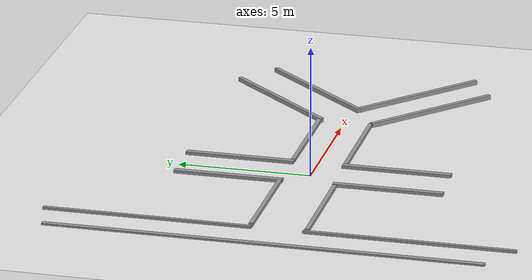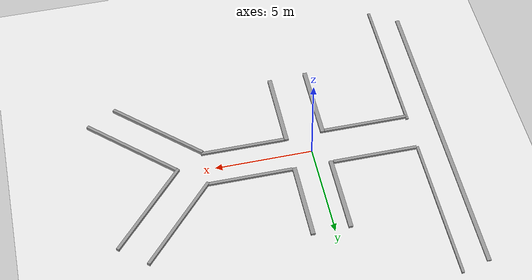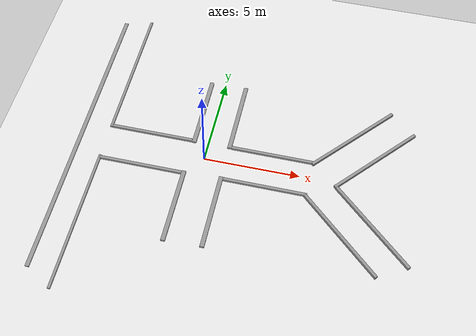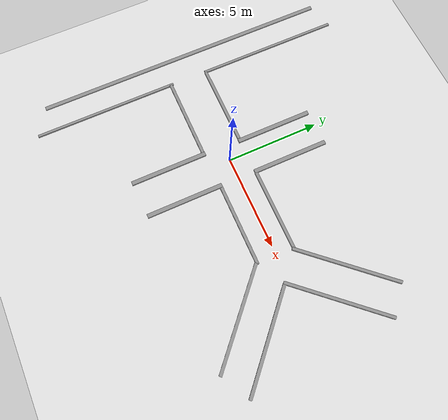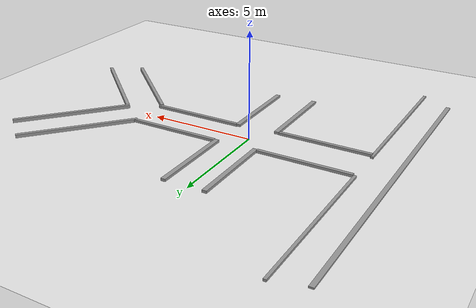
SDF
<sdf version="1.7">
 <world name="default">
  <scene><ambient>0.4 0.4 0.4 1</ambient><background>0.7 0.7 0.7 1</background><shadows>1</shadows></scene>
  <light name="sun" type="directional">
   <pose>0 0 10 0 -0 0</pose>
   <diffuse>0.8 0.8 0.8 1</diffuse>
   <specular>0.2 0.2 0.2 1</specular>
   <attenuation>
    <range>1000</range>
    <constant>0.9</constant>
    <linear>0.01</linear>
    <quadratic>0.001</quadratic>
   </attenuation>
   <direction>-0.5 0.1 -0.9</direction>
   <spot><inner_angle>0</inner_angle><outer_angle>0</outer_angle><falloff>0</falloff></spot>
  </light>
  <model name="ground_plane">
   <static>1</static>
   <link name="link">
    <collision name="collision">
     <geometry><plane><normal>0 0 1</normal><size>100 100</size></plane></geometry>
     <surface>
      <contact><collide_bitmask>65535</collide_bitmask></contact>
      <friction><ode><mu>100</mu><mu2>50</mu2></ode></friction>
     </surface>
    </collision>
    <visual name="visual">
     <cast_shadows>0</cast_shadows>
     <geometry><plane><normal>0 0 1</normal><size>100 100</size></plane></geometry>
     <material>
      <script><uri>file://media/materials/scripts/gazebo.material</uri><name>Gazebo/White</name></script>
     </material>
    </visual>
   </link>
  </model>
  <physics type="ode">
   <real_time_update_rate>1000</real_time_update_rate>
   <max_step_size>0.001</max_step_size>
   <real_time_factor>1</real_time_factor>
   <ode>
    <solver>
     <type>quick</type>
     <iters>150</iters>
     <precon_iters>0</precon_iters>
     <sor>1.4</sor>
     <use_dynamic_moi_rescaling>1</use_dynamic_moi_rescaling>
    </solver>
    <constraints>
     <cfm>1e-05</cfm>
     <erp>0.2</erp>
     <contact_max_correcting_vel>2000</contact_max_correcting_vel>
     <contact_surface_layer>0.01</contact_surface_layer>
    </constraints>
   </ode>
  </physics>
  <gravity>0 0 -9.8</gravity>
  <magnetic_field>6e-06 2.3e-05 -4.2e-05</magnetic_field>
  <atmosphere type="adiabatic"/>
  <spherical_coordinates>
   <surface_model>EARTH_WGS84</surface_model>
   <latitude_deg>0</latitude_deg>
   <longitude_deg>0</longitude_deg>
   <elevation>0</elevation>
   <heading_deg>0</heading_deg>
  </spherical_coordinates>
  <model name="env.sdf">
   <link name="link_1">
    <inertial>
     <mass>0.106058</mass>
     <inertia>
      <ixx>0.149626</ixx>
      <ixy>0</ixy>
      <ixz>0</ixz>
      <iyy>0.000549062</iyy>
      <iyz>0</iyz>
      <izz>0.149932</izz>
     </inertia>
    </inertial>
    <pose>2.68521 -3.91375 0.238962 0 -0 0</pose>
    <visual name="visual">
     <geometry><box><size>0.2199 4.11288 0.117337</size></box></geometry>
     <material>
      <lighting>1</lighting>
      <script><uri>file://media/materials/scripts/gazebo.material</uri><name>Gazebo/Grey</name></script>
      <shader type="pixel"/>
     </material>
    </visual>
    <collision name="collision">
     <geometry><box><size>0.2199 4.11288 0.117337</size></box></geometry>
     <surface>
      <friction>
       <ode><mu>1</mu><mu2>1</mu2><fdir1>0 0 0</fdir1><slip1>0</slip1><slip2>0</slip2></ode>
       <torsional>
        <coefficient>1</coefficient>
        <patch_radius>0</patch_radius>
        <surface_radius>0</surface_radius>
        <use_patch_radius>1</use_patch_radius>
        <ode><slip>0</slip></ode>
       </torsional>
      </friction>
      <bounce><restitution_coefficient>0</restitution_coefficient><threshold>1e+06</threshold></bounce>
      <contact>
       <collide_without_contact>0</collide_without_contact>
       <collide_without_contact_bitmask>1</collide_without_contact_bitmask>
       <collide_bitmask>1</collide_bitmask>
       <ode>
        <soft_cfm>0</soft_cfm>
        <soft_erp>0.2</soft_erp>
        <kp>1e+13</kp>
        <kd>1</kd>
        <max_vel>0.01</max_vel>
        <min_depth>0</min_depth>
       </ode>
       <bullet>
        <split_impulse>1</split_impulse>
        <split_impulse_penetration_threshold>-0.01</split_impulse_penetration_threshold>
        <soft_cfm>0</soft_cfm>
        <soft_erp>0.2</soft_erp>
        <kp>1e+13</kp>
        <kd>1</kd>
       </bullet>
      </contact>
     </surface>
    </collision>
   </link>
   <link name="link_1_clone">
    <inertial>
     <mass>0.106058</mass>
     <inertia>
      <ixx>0.149626</ixx>
      <ixy>0</ixy>
      <ixz>0</ixz>
      <iyy>0.000549062</iyy>
      <iyz>0</iyz>
      <izz>0.149932</izz>
     </inertia>
    </inertial>
    <pose>0.755676 -4.00204 0.265705 0 -0 0</pose>
    <visual name="visual">
     <geometry><box><size>0.2199 4.11288 0.117337</size></box></geometry>
     <material>
      <lighting>1</lighting>
      <script><uri>file://media/materials/scripts/gazebo.material</uri><name>Gazebo/Grey</name></script>
      <shader type="pixel"/>
     </material>
    </visual>
    <collision name="collision">
     <geometry><box><size>0.2199 4.11288 0.117337</size></box></geometry>
     <surface>
      <friction>
       <ode><mu>1</mu><mu2>1</mu2><fdir1>0 0 0</fdir1><slip1>0</slip1><slip2>0</slip2></ode>
       <torsional>
        <coefficient>1</coefficient>
        <patch_radius>0</patch_radius>
        <surface_radius>0</surface_radius>
        <use_patch_radius>1</use_patch_radius>
        <ode><slip>0</slip></ode>
       </torsional>
      </friction>
      <bounce><restitution_coefficient>0</restitution_coefficient><threshold>1e+06</threshold></bounce>
      <contact>
       <collide_without_contact>0</collide_without_contact>
       <collide_without_contact_bitmask>1</collide_without_contact_bitmask>
       <collide_bitmask>1</collide_bitmask>
       <ode>
        <soft_cfm>0</soft_cfm>
        <soft_erp>0.2</soft_erp>
        <kp>1e+13</kp>
        <kd>1</kd>
        <max_vel>0.01</max_vel>
        <min_depth>0</min_depth>
       </ode>
       <bullet>
        <split_impulse>1</split_impulse>
        <split_impulse_penetration_threshold>-0.01</split_impulse_penetration_threshold>
        <soft_cfm>0</soft_cfm>
        <soft_erp>0.2</soft_erp>
        <kp>1e+13</kp>
        <kd>1</kd>
       </bullet>
      </contact>
     </surface>
    </collision>
   </link>
   <link name="link_1_clone_0">
    <inertial>
     <mass>0.106058</mass>
     <inertia>
      <ixx>0.149626</ixx>
      <ixy>0</ixy>
      <ixz>0</ixz>
      <iyy>0.000549062</iyy>
      <iyz>0</iyz>
      <izz>0.149932</izz>
     </inertia>
    </inertial>
    <pose>0.793845 2.01077 0.229783 0 -0 0</pose>
    <visual name="visual">
     <geometry><box><size>0.2199 4.11288 0.117337</size></box></geometry>
     <material>
      <lighting>1</lighting>
      <script><uri>file://media/materials/scripts/gazebo.material</uri><name>Gazebo/Grey</name></script>
      <shader type="pixel"/>
     </material>
    </visual>
    <collision name="collision">
     <geometry><box><size>0.2199 4.11288 0.117337</size></box></geometry>
     <surface>
      <friction>
       <ode><mu>1</mu><mu2>1</mu2><fdir1>0 0 0</fdir1><slip1>0</slip1><slip2>0</slip2></ode>
       <torsional>
        <coefficient>1</coefficient>
        <patch_radius>0</patch_radius>
        <surface_radius>0</surface_radius>
        <use_patch_radius>1</use_patch_radius>
        <ode><slip>0</slip></ode>
       </torsional>
      </friction>
      <bounce><restitution_coefficient>0</restitution_coefficient><threshold>1e+06</threshold></bounce>
      <contact>
       <collide_without_contact>0</collide_without_contact>
       <collide_without_contact_bitmask>1</collide_without_contact_bitmask>
       <collide_bitmask>1</collide_bitmask>
       <ode>
        <soft_cfm>0</soft_cfm>
        <soft_erp>0.2</soft_erp>
        <kp>1e+13</kp>
        <kd>1</kd>
        <max_vel>0.01</max_vel>
        <min_depth>0</min_depth>
       </ode>
       <bullet>
        <split_impulse>1</split_impulse>
        <split_impulse_penetration_threshold>-0.01</split_impulse_penetration_threshold>
        <soft_cfm>0</soft_cfm>
        <soft_erp>0.2</soft_erp>
        <kp>1e+13</kp>
        <kd>1</kd>
       </bullet>
      </contact>
     </surface>
    </collision>
   </link>
   <link name="link_1_clone_1">
    <inertial>
     <mass>0.106058</mass>
     <inertia>
      <ixx>0.149626</ixx>
      <ixy>0</ixy>
      <ixz>0</ixz>
      <iyy>0.000549062</iyy>
      <iyz>0</iyz>
      <izz>0.149932</izz>
     </inertia>
    </inertial>
    <pose>2.69471 2.04252 0.23165 0 -0 0</pose>
    <visual name="visual">
     <geometry><box><size>0.2199 4.11288 0.117337</size></box></geometry>
     <material>
      <lighting>1</lighting>
      <script><uri>file://media/materials/scripts/gazebo.material</uri><name>Gazebo/Grey</name></script>
      <shader type="pixel"/>
     </material>
    </visual>
    <collision name="collision">
     <geometry><box><size>0.2199 4.11288 0.117337</size></box></geometry>
     <surface>
      <friction>
       <ode><mu>1</mu><mu2>1</mu2><fdir1>0 0 0</fdir1><slip1>0</slip1><slip2>0</slip2></ode>
       <torsional>
        <coefficient>1</coefficient>
        <patch_radius>0</patch_radius>
        <surface_radius>0</surface_radius>
        <use_patch_radius>1</use_patch_radius>
        <ode><slip>0</slip></ode>
       </torsional>
      </friction>
      <bounce><restitution_coefficient>0</restitution_coefficient><threshold>1e+06</threshold></bounce>
      <contact>
       <collide_without_contact>0</collide_without_contact>
       <collide_without_contact_bitmask>1</collide_without_contact_bitmask>
       <collide_bitmask>1</collide_bitmask>
       <ode>
        <soft_cfm>0</soft_cfm>
        <soft_erp>0.2</soft_erp>
        <kp>1e+13</kp>
        <kd>1</kd>
        <max_vel>0.01</max_vel>
        <min_depth>0</min_depth>
       </ode>
       <bullet>
        <split_impulse>1</split_impulse>
        <split_impulse_penetration_threshold>-0.01</split_impulse_penetration_threshold>
        <soft_cfm>0</soft_cfm>
        <soft_erp>0.2</soft_erp>
        <kp>1e+13</kp>
        <kd>1</kd>
       </bullet>
      </contact>
     </surface>
    </collision>
   </link>
   <link name="link_2">
    <inertial>
     <mass>0.0833088</mass>
     <inertia>
      <ixx>0.000274978</ixx>
      <ixy>0</ixy>
      <ixz>0</ixz>
      <iyy>0.132485</iyy>
      <iyz>0</iyz>
      <izz>0.132558</izz>
     </inertia>
    </inertial>
    <pose>4.93966 -1.93411 0.219568 0 -0 0</pose>
    <visual name="visual">
     <geometry><box><size>4.3668 0.158383 0.120513</size></box></geometry>
     <material>
      <lighting>1</lighting>
      <script><uri>file://media/materials/scripts/gazebo.material</uri><name>Gazebo/Grey</name></script>
      <shader type="pixel"/>
     </material>
    </visual>
    <collision name="collision">
     <geometry><box><size>4.3668 0.158383 0.120513</size></box></geometry>
     <surface>
      <friction>
       <ode><mu>1</mu><mu2>1</mu2><fdir1>0 0 0</fdir1><slip1>0</slip1><slip2>0</slip2></ode>
       <torsional>
        <coefficient>1</coefficient>
        <patch_radius>0</patch_radius>
        <surface_radius>0</surface_radius>
        <use_patch_radius>1</use_patch_radius>
        <ode><slip>0</slip></ode>
       </torsional>
      </friction>
      <bounce><restitution_coefficient>0</restitution_coefficient><threshold>1e+06</threshold></bounce>
      <contact>
       <collide_without_contact>0</collide_without_contact>
       <collide_without_contact_bitmask>1</collide_without_contact_bitmask>
       <collide_bitmask>1</collide_bitmask>
       <ode>
        <soft_cfm>0</soft_cfm>
        <soft_erp>0.2</soft_erp>
        <kp>1e+13</kp>
        <kd>1</kd>
        <max_vel>0.01</max_vel>
        <min_depth>0</min_depth>
       </ode>
       <bullet>
        <split_impulse>1</split_impulse>
        <split_impulse_penetration_threshold>-0.01</split_impulse_penetration_threshold>
        <soft_cfm>0</soft_cfm>
        <soft_erp>0.2</soft_erp>
        <kp>1e+13</kp>
        <kd>1</kd>
       </bullet>
      </contact>
     </surface>
    </collision>
   </link>
   <link name="link_2_clone">
    <inertial>
     <mass>0.0833088</mass>
     <inertia>
      <ixx>0.000274978</ixx>
      <ixy>0</ixy>
      <ixz>0</ixz>
      <iyy>0.132485</iyy>
      <iyz>0</iyz>
      <izz>0.132558</izz>
     </inertia>
    </inertial>
    <pose>4.98099 0.041324 0.242155 0 -0 0</pose>
    <visual name="visual">
     <geometry><box><size>4.3668 0.158383 0.120513</size></box></geometry>
     <material>
      <lighting>1</lighting>
      <script><uri>file://media/materials/scripts/gazebo.material</uri><name>Gazebo/Grey</name></script>
      <shader type="pixel"/>
     </material>
    </visual>
    <collision name="collision">
     <geometry><box><size>4.3668 0.158383 0.120513</size></box></geometry>
     <surface>
      <friction>
       <ode><mu>1</mu><mu2>1</mu2><fdir1>0 0 0</fdir1><slip1>0</slip1><slip2>0</slip2></ode>
       <torsional>
        <coefficient>1</coefficient>
        <patch_radius>0</patch_radius>
        <surface_radius>0</surface_radius>
        <use_patch_radius>1</use_patch_radius>
        <ode><slip>0</slip></ode>
       </torsional>
      </friction>
      <bounce><restitution_coefficient>0</restitution_coefficient><threshold>1e+06</threshold></bounce>
      <contact>
       <collide_without_contact>0</collide_without_contact>
       <collide_without_contact_bitmask>1</collide_without_contact_bitmask>
       <collide_bitmask>1</collide_bitmask>
       <ode>
        <soft_cfm>0</soft_cfm>
        <soft_erp>0.2</soft_erp>
        <kp>1e+13</kp>
        <kd>1</kd>
        <max_vel>0.01</max_vel>
        <min_depth>0</min_depth>
       </ode>
       <bullet>
        <split_impulse>1</split_impulse>
        <split_impulse_penetration_threshold>-0.01</split_impulse_penetration_threshold>
        <soft_cfm>0</soft_cfm>
        <soft_erp>0.2</soft_erp>
        <kp>1e+13</kp>
        <kd>1</kd>
       </bullet>
      </contact>
     </surface>
    </collision>
   </link>
   <link name="link_2_clone_0">
    <inertial>
     <mass>0.0833088</mass>
     <inertia>
      <ixx>0.000274978</ixx>
      <ixy>0</ixy>
      <ixz>0</ixz>
      <iyy>0.132485</iyy>
      <iyz>0</iyz>
      <izz>0.132558</izz>
     </inertia>
    </inertial>
    <pose>-1.50486 0.035942 0.25474 0 -0 0</pose>
    <visual name="visual">
     <geometry><box><size>4.3668 0.158383 0.120513</size></box></geometry>
     <material>
      <lighting>1</lighting>
      <script><uri>file://media/materials/scripts/gazebo.material</uri><name>Gazebo/Grey</name></script>
      <shader type="pixel"/>
     </material>
    </visual>
    <collision name="collision">
     <geometry><box><size>4.3668 0.158383 0.120513</size></box></geometry>
     <surface>
      <friction>
       <ode><mu>1</mu><mu2>1</mu2><fdir1>0 0 0</fdir1><slip1>0</slip1><slip2>0</slip2></ode>
       <torsional>
        <coefficient>1</coefficient>
        <patch_radius>0</patch_radius>
        <surface_radius>0</surface_radius>
        <use_patch_radius>1</use_patch_radius>
        <ode><slip>0</slip></ode>
       </torsional>
      </friction>
      <bounce><restitution_coefficient>0</restitution_coefficient><threshold>1e+06</threshold></bounce>
      <contact>
       <collide_without_contact>0</collide_without_contact>
       <collide_without_contact_bitmask>1</collide_without_contact_bitmask>
       <collide_bitmask>1</collide_bitmask>
       <ode>
        <soft_cfm>0</soft_cfm>
        <soft_erp>0.2</soft_erp>
        <kp>1e+13</kp>
        <kd>1</kd>
        <max_vel>0.01</max_vel>
        <min_depth>0</min_depth>
       </ode>
       <bullet>
        <split_impulse>1</split_impulse>
        <split_impulse_penetration_threshold>-0.01</split_impulse_penetration_threshold>
        <soft_cfm>0</soft_cfm>
        <soft_erp>0.2</soft_erp>
        <kp>1e+13</kp>
        <kd>1</kd>
       </bullet>
      </contact>
     </surface>
    </collision>
   </link>
   <link name="link_2_clone_1">
    <inertial>
     <mass>0.0833088</mass>
     <inertia>
      <ixx>0.000274978</ixx>
      <ixy>0</ixy>
      <ixz>0</ixz>
      <iyy>0.132485</iyy>
      <iyz>0</iyz>
      <izz>0.132558</izz>
     </inertia>
    </inertial>
    <pose>-1.54574 -2.03626 0.248891 0 -0 0</pose>
    <visual name="visual">
     <geometry><box><size>4.3668 0.158383 0.120513</size></box></geometry>
     <material>
      <lighting>1</lighting>
      <script><uri>file://media/materials/scripts/gazebo.material</uri><name>Gazebo/Grey</name></script>
      <shader type="pixel"/>
     </material>
    </visual>
    <collision name="collision">
     <geometry><box><size>4.3668 0.158383 0.120513</size></box></geometry>
     <surface>
      <friction>
       <ode><mu>1</mu><mu2>1</mu2><fdir1>0 0 0</fdir1><slip1>0</slip1><slip2>0</slip2></ode>
       <torsional>
        <coefficient>1</coefficient>
        <patch_radius>0</patch_radius>
        <surface_radius>0</surface_radius>
        <use_patch_radius>1</use_patch_radius>
        <ode><slip>0</slip></ode>
       </torsional>
      </friction>
      <bounce><restitution_coefficient>0</restitution_coefficient><threshold>1e+06</threshold></bounce>
      <contact>
       <collide_without_contact>0</collide_without_contact>
       <collide_without_contact_bitmask>1</collide_without_contact_bitmask>
       <collide_bitmask>1</collide_bitmask>
       <ode>
        <soft_cfm>0</soft_cfm>
        <soft_erp>0.2</soft_erp>
        <kp>1e+13</kp>
        <kd>1</kd>
        <max_vel>0.01</max_vel>
        <min_depth>0</min_depth>
       </ode>
       <bullet>
        <split_impulse>1</split_impulse>
        <split_impulse_penetration_threshold>-0.01</split_impulse_penetration_threshold>
        <soft_cfm>0</soft_cfm>
        <soft_erp>0.2</soft_erp>
        <kp>1e+13</kp>
        <kd>1</kd>
       </bullet>
      </contact>
     </surface>
    </collision>
   </link>
   <link name="link_3">
    <inertial>
     <mass>0.147164</mass>
     <inertia>
      <ixx>0.372449</ixx>
      <ixy>0</ixy>
      <ixz>0</ixz>
      <iyy>0.000654848</iyy>
      <iyz>0</iyz>
      <izz>0.372426</izz>
     </inertia>
    </inertial>
    <pose>9.05692 -3.85554 0.239251 0 -0 0.82413</pose>
    <visual name="visual">
     <geometry><box><size>0.160507 5.5084 0.166237</size></box></geometry>
     <material>
      <lighting>1</lighting>
      <script><uri>file://media/materials/scripts/gazebo.material</uri><name>Gazebo/Grey</name></script>
      <shader type="pixel"/>
     </material>
    </visual>
    <collision name="collision">
     <geometry><box><size>0.160507 5.5084 0.166237</size></box></geometry>
     <surface>
      <friction>
       <ode><mu>1</mu><mu2>1</mu2><fdir1>0 0 0</fdir1><slip1>0</slip1><slip2>0</slip2></ode>
       <torsional>
        <coefficient>1</coefficient>
        <patch_radius>0</patch_radius>
        <surface_radius>0</surface_radius>
        <use_patch_radius>1</use_patch_radius>
        <ode><slip>0</slip></ode>
       </torsional>
      </friction>
      <bounce><restitution_coefficient>0</restitution_coefficient><threshold>1e+06</threshold></bounce>
      <contact>
       <collide_without_contact>0</collide_without_contact>
       <collide_without_contact_bitmask>1</collide_without_contact_bitmask>
       <collide_bitmask>1</collide_bitmask>
       <ode>
        <soft_cfm>0</soft_cfm>
        <soft_erp>0.2</soft_erp>
        <kp>1e+13</kp>
        <kd>1</kd>
        <max_vel>0.01</max_vel>
        <min_depth>0</min_depth>
       </ode>
       <bullet>
        <split_impulse>1</split_impulse>
        <split_impulse_penetration_threshold>-0.01</split_impulse_penetration_threshold>
        <soft_cfm>0</soft_cfm>
        <soft_erp>0.2</soft_erp>
        <kp>1e+13</kp>
        <kd>1</kd>
       </bullet>
      </contact>
     </surface>
    </collision>
   </link>
   <link name="link_3_clone">
    <inertial>
     <mass>0.147164</mass>
     <inertia>
      <ixx>0.372449</ixx>
      <ixy>0</ixy>
      <ixz>0</ixz>
      <iyy>0.000654848</iyy>
      <iyz>0</iyz>
      <izz>0.372426</izz>
     </inertia>
    </inertial>
    <pose>10.5273 -3.03284 0.232411 0 -0 0.82413</pose>
    <visual name="visual">
     <geometry><box><size>0.160507 5.5084 0.166237</size></box></geometry>
     <material>
      <lighting>1</lighting>
      <script><uri>file://media/materials/scripts/gazebo.material</uri><name>Gazebo/Grey</name></script>
      <shader type="pixel"/>
     </material>
    </visual>
    <collision name="collision">
     <geometry><box><size>0.160507 5.5084 0.166237</size></box></geometry>
     <surface>
      <friction>
       <ode><mu>1</mu><mu2>1</mu2><fdir1>0 0 0</fdir1><slip1>0</slip1><slip2>0</slip2></ode>
       <torsional>
        <coefficient>1</coefficient>
        <patch_radius>0</patch_radius>
        <surface_radius>0</surface_radius>
        <use_patch_radius>1</use_patch_radius>
        <ode><slip>0</slip></ode>
       </torsional>
      </friction>
      <bounce><restitution_coefficient>0</restitution_coefficient><threshold>1e+06</threshold></bounce>
      <contact>
       <collide_without_contact>0</collide_without_contact>
       <collide_without_contact_bitmask>1</collide_without_contact_bitmask>
       <collide_bitmask>1</collide_bitmask>
       <ode>
        <soft_cfm>0</soft_cfm>
        <soft_erp>0.2</soft_erp>
        <kp>1e+13</kp>
        <kd>1</kd>
        <max_vel>0.01</max_vel>
        <min_depth>0</min_depth>
       </ode>
       <bullet>
        <split_impulse>1</split_impulse>
        <split_impulse_penetration_threshold>-0.01</split_impulse_penetration_threshold>
        <soft_cfm>0</soft_cfm>
        <soft_erp>0.2</soft_erp>
        <kp>1e+13</kp>
        <kd>1</kd>
       </bullet>
      </contact>
     </surface>
    </collision>
   </link>
   <link name="link_3_clone_0">
    <inertial>
     <mass>0.147164</mass>
     <inertia>
      <ixx>0.372449</ixx>
      <ixy>0</ixy>
      <ixz>0</ixz>
      <iyy>0.000654848</iyy>
      <iyz>0</iyz>
      <izz>0.372426</izz>
     </inertia>
    </inertial>
    <pose>8.91864 2.01356 0.227453 0 -0 2.41841</pose>
    <visual name="visual">
     <geometry><box><size>0.160507 5.5084 0.166237</size></box></geometry>
     <material>
      <lighting>1</lighting>
      <script><uri>file://media/materials/scripts/gazebo.material</uri><name>Gazebo/Grey</name></script>
      <shader type="pixel"/>
     </material>
    </visual>
    <collision name="collision">
     <geometry><box><size>0.160507 5.5084 0.166237</size></box></geometry>
     <surface>
      <friction>
       <ode><mu>1</mu><mu2>1</mu2><fdir1>0 0 0</fdir1><slip1>0</slip1><slip2>0</slip2></ode>
       <torsional>
        <coefficient>1</coefficient>
        <patch_radius>0</patch_radius>
        <surface_radius>0</surface_radius>
        <use_patch_radius>1</use_patch_radius>
        <ode><slip>0</slip></ode>
       </torsional>
      </friction>
      <bounce><restitution_coefficient>0</restitution_coefficient><threshold>1e+06</threshold></bounce>
      <contact>
       <collide_without_contact>0</collide_without_contact>
       <collide_without_contact_bitmask>1</collide_without_contact_bitmask>
       <collide_bitmask>1</collide_bitmask>
       <ode>
        <soft_cfm>0</soft_cfm>
        <soft_erp>0.2</soft_erp>
        <kp>1e+13</kp>
        <kd>1</kd>
        <max_vel>0.01</max_vel>
        <min_depth>0</min_depth>
       </ode>
       <bullet>
        <split_impulse>1</split_impulse>
        <split_impulse_penetration_threshold>-0.01</split_impulse_penetration_threshold>
        <soft_cfm>0</soft_cfm>
        <soft_erp>0.2</soft_erp>
        <kp>1e+13</kp>
        <kd>1</kd>
       </bullet>
      </contact>
     </surface>
    </collision>
   </link>
   <link name="link_3_clone_0_clone">
    <inertial>
     <mass>0.147164</mass>
     <inertia>
      <ixx>0.372449</ixx>
      <ixy>0</ixy>
      <ixz>0</ixz>
      <iyy>0.000654848</iyy>
      <iyz>0</iyz>
      <izz>0.372426</izz>
     </inertia>
    </inertial>
    <pose>10.2454 0.882834 0.2325 0 -0 2.41841</pose>
    <visual name="visual">
     <geometry><box><size>0.160507 5.5084 0.166237</size></box></geometry>
     <material>
      <lighting>1</lighting>
      <script><uri>file://media/materials/scripts/gazebo.material</uri><name>Gazebo/Grey</name></script>
      <shader type="pixel"/>
     </material>
    </visual>
    <collision name="collision">
     <geometry><box><size>0.160507 5.5084 0.166237</size></box></geometry>
     <surface>
      <friction>
       <ode><mu>1</mu><mu2>1</mu2><fdir1>0 0 0</fdir1><slip1>0</slip1><slip2>0</slip2></ode>
       <torsional>
        <coefficient>1</coefficient>
        <patch_radius>0</patch_radius>
        <surface_radius>0</surface_radius>
        <use_patch_radius>1</use_patch_radius>
        <ode><slip>0</slip></ode>
       </torsional>
      </friction>
      <bounce><restitution_coefficient>0</restitution_coefficient><threshold>1e+06</threshold></bounce>
      <contact>
       <collide_without_contact>0</collide_without_contact>
       <collide_without_contact_bitmask>1</collide_without_contact_bitmask>
       <collide_bitmask>1</collide_bitmask>
       <ode>
        <soft_cfm>0</soft_cfm>
        <soft_erp>0.2</soft_erp>
        <kp>1e+13</kp>
        <kd>1</kd>
        <max_vel>0.01</max_vel>
        <min_depth>0</min_depth>
       </ode>
       <bullet>
        <split_impulse>1</split_impulse>
        <split_impulse_penetration_threshold>-0.01</split_impulse_penetration_threshold>
        <soft_cfm>0</soft_cfm>
        <soft_erp>0.2</soft_erp>
        <kp>1e+13</kp>
        <kd>1</kd>
       </bullet>
      </contact>
     </surface>
    </collision>
   </link>
   <link name="link_4">
    <inertial>
     <mass>0.226541</mass>
     <inertia>
      <ixx>4.92085</ixx>
      <ixy>0</ixy>
      <ixz>0</ixz>
      <iyy>0.000895532</iyy>
      <iyz>0</iyz>
      <izz>4.92158</izz>
     </inertia>
    </inertial>
    <pose>-5.17298 -0.712129 0.198656 0 -0 0</pose>
    <visual name="visual">
     <geometry><box><size>0.207004 16.1448 0.067722</size></box></geometry>
     <material>
      <lighting>1</lighting>
      <script><uri>file://media/materials/scripts/gazebo.material</uri><name>Gazebo/Grey</name></script>
      <shader type="pixel"/>
     </material>
    </visual>
    <collision name="collision">
     <geometry><box><size>0.207004 16.1448 0.067722</size></box></geometry>
     <surface>
      <friction>
       <ode><mu>1</mu><mu2>1</mu2><fdir1>0 0 0</fdir1><slip1>0</slip1><slip2>0</slip2></ode>
       <torsional>
        <coefficient>1</coefficient>
        <patch_radius>0</patch_radius>
        <surface_radius>0</surface_radius>
        <use_patch_radius>1</use_patch_radius>
        <ode><slip>0</slip></ode>
       </torsional>
      </friction>
      <bounce><restitution_coefficient>0</restitution_coefficient><threshold>1e+06</threshold></bounce>
      <contact>
       <collide_without_contact>0</collide_without_contact>
       <collide_without_contact_bitmask>1</collide_without_contact_bitmask>
       <collide_bitmask>1</collide_bitmask>
       <ode>
        <soft_cfm>0</soft_cfm>
        <soft_erp>0.2</soft_erp>
        <kp>1e+13</kp>
        <kd>1</kd>
        <max_vel>0.01</max_vel>
        <min_depth>0</min_depth>
       </ode>
       <bullet>
        <split_impulse>1</split_impulse>
        <split_impulse_penetration_threshold>-0.01</split_impulse_penetration_threshold>
        <soft_cfm>0</soft_cfm>
        <soft_erp>0.2</soft_erp>
        <kp>1e+13</kp>
        <kd>1</kd>
       </bullet>
      </contact>
     </surface>
    </collision>
   </link>
   <link name="link_6">
    <inertial>
     <mass>0.118992</mass>
     <inertia>
      <ixx>0.595982</ixx>
      <ixy>0</ixy>
      <ixz>0</ixz>
      <iyy>0.000309968</iyy>
      <iyz>0</iyz>
      <izz>0.596041</izz>
     </inertia>
    </inertial>
    <pose>-3.75613 3.86954 0.193673 0 -0 0</pose>
    <visual name="visual">
     <geometry><box><size>0.136421 7.75179 0.112466</size></box></geometry>
     <material>
      <lighting>1</lighting>
      <script><uri>file://media/materials/scripts/gazebo.material</uri><name>Gazebo/Grey</name></script>
      <shader type="pixel"/>
     </material>
    </visual>
    <collision name="collision">
     <geometry><box><size>0.136421 7.75179 0.112466</size></box></geometry>
     <surface>
      <friction>
       <ode><mu>1</mu><mu2>1</mu2><fdir1>0 0 0</fdir1><slip1>0</slip1><slip2>0</slip2></ode>
       <torsional>
        <coefficient>1</coefficient>
        <patch_radius>0</patch_radius>
        <surface_radius>0</surface_radius>
        <use_patch_radius>1</use_patch_radius>
        <ode><slip>0</slip></ode>
       </torsional>
      </friction>
      <bounce><restitution_coefficient>0</restitution_coefficient><threshold>1e+06</threshold></bounce>
      <contact>
       <collide_without_contact>0</collide_without_contact>
       <collide_without_contact_bitmask>1</collide_without_contact_bitmask>
       <collide_bitmask>1</collide_bitmask>
       <ode>
        <soft_cfm>0</soft_cfm>
        <soft_erp>0.2</soft_erp>
        <kp>1e+13</kp>
        <kd>1</kd>
        <max_vel>0.01</max_vel>
        <min_depth>0</min_depth>
       </ode>
       <bullet>
        <split_impulse>1</split_impulse>
        <split_impulse_penetration_threshold>-0.01</split_impulse_penetration_threshold>
        <soft_cfm>0</soft_cfm>
        <soft_erp>0.2</soft_erp>
        <kp>1e+13</kp>
        <kd>1</kd>
       </bullet>
      </contact>
     </surface>
    </collision>
   </link>
   <link name="link_6_clone">
    <inertial>
     <mass>0.118992</mass>
     <inertia>
      <ixx>0.595982</ixx>
      <ixy>0</ixy>
      <ixz>0</ixz>
      <iyy>0.000309968</iyy>
      <iyz>0</iyz>
      <izz>0.596041</izz>
     </inertia>
    </inertial>
    <pose>-3.7642 -5.76568 0.200008 0 -0 0</pose>
    <visual name="visual">
     <geometry><box><size>0.136421 7.75179 0.112466</size></box></geometry>
     <material>
      <lighting>1</lighting>
      <script><uri>file://media/materials/scripts/gazebo.material</uri><name>Gazebo/Grey</name></script>
      <shader type="pixel"/>
     </material>
    </visual>
    <collision name="collision">
     <geometry><box><size>0.136421 7.75179 0.112466</size></box></geometry>
     <surface>
      <friction>
       <ode><mu>1</mu><mu2>1</mu2><fdir1>0 0 0</fdir1><slip1>0</slip1><slip2>0</slip2></ode>
       <torsional>
        <coefficient>1</coefficient>
        <patch_radius>0</patch_radius>
        <surface_radius>0</surface_radius>
        <use_patch_radius>1</use_patch_radius>
        <ode><slip>0</slip></ode>
       </torsional>
      </friction>
      <bounce><restitution_coefficient>0</restitution_coefficient><threshold>1e+06</threshold></bounce>
      <contact>
       <collide_without_contact>0</collide_without_contact>
       <collide_without_contact_bitmask>1</collide_without_contact_bitmask>
       <collide_bitmask>1</collide_bitmask>
       <ode>
        <soft_cfm>0</soft_cfm>
        <soft_erp>0.2</soft_erp>
        <kp>1e+13</kp>
        <kd>1</kd>
        <max_vel>0.01</max_vel>
        <min_depth>0</min_depth>
       </ode>
       <bullet>
        <split_impulse>1</split_impulse>
        <split_impulse_penetration_threshold>-0.01</split_impulse_penetration_threshold>
        <soft_cfm>0</soft_cfm>
        <soft_erp>0.2</soft_erp>
        <kp>1e+13</kp>
        <kd>1</kd>
       </bullet>
      </contact>
     </surface>
    </collision>
   </link>
   <static>0</static>
   <pose>-1.57361 0.90389 -0.180294 0 -0 0</pose>
  </model>
 </world>
</sdf>
